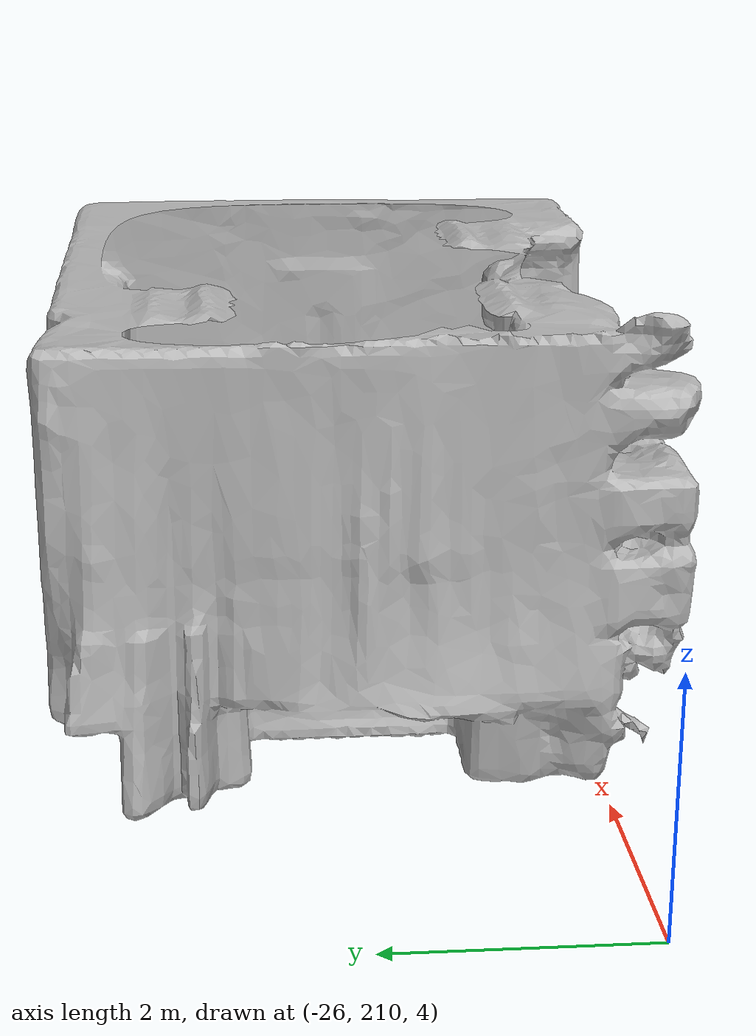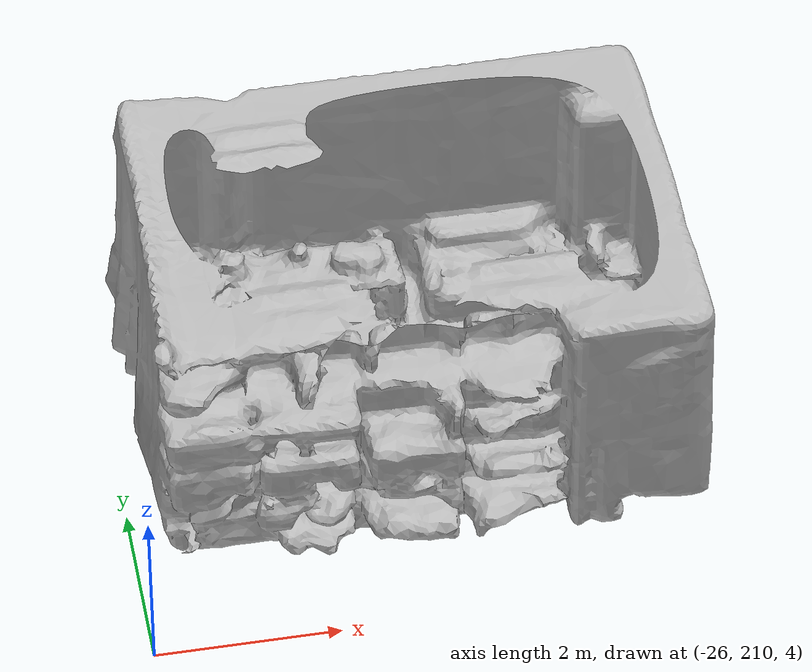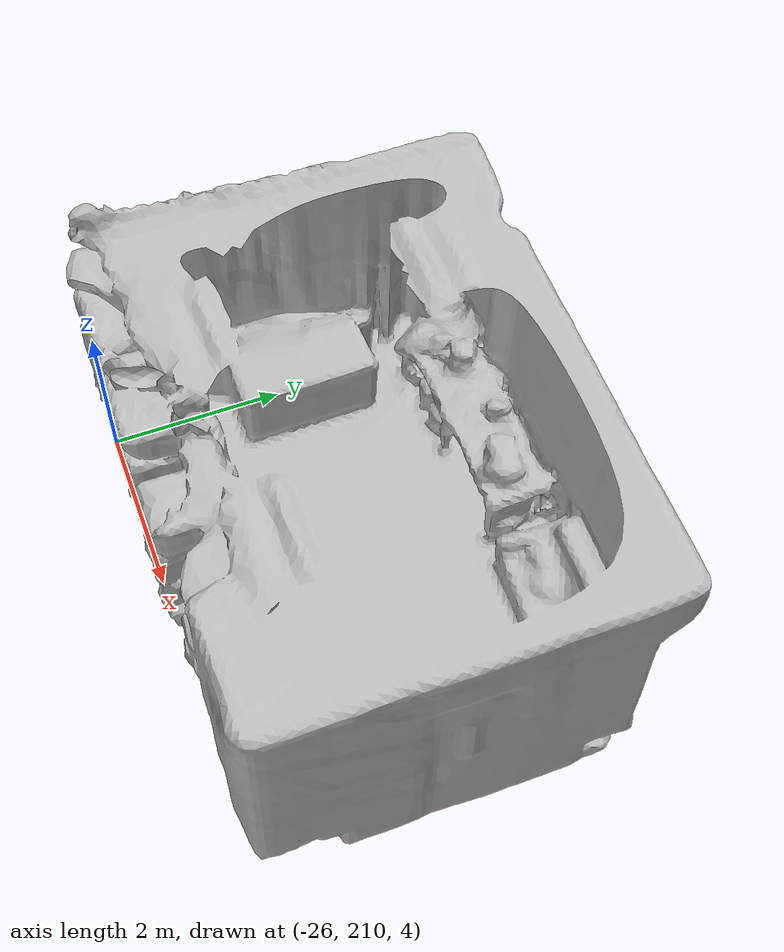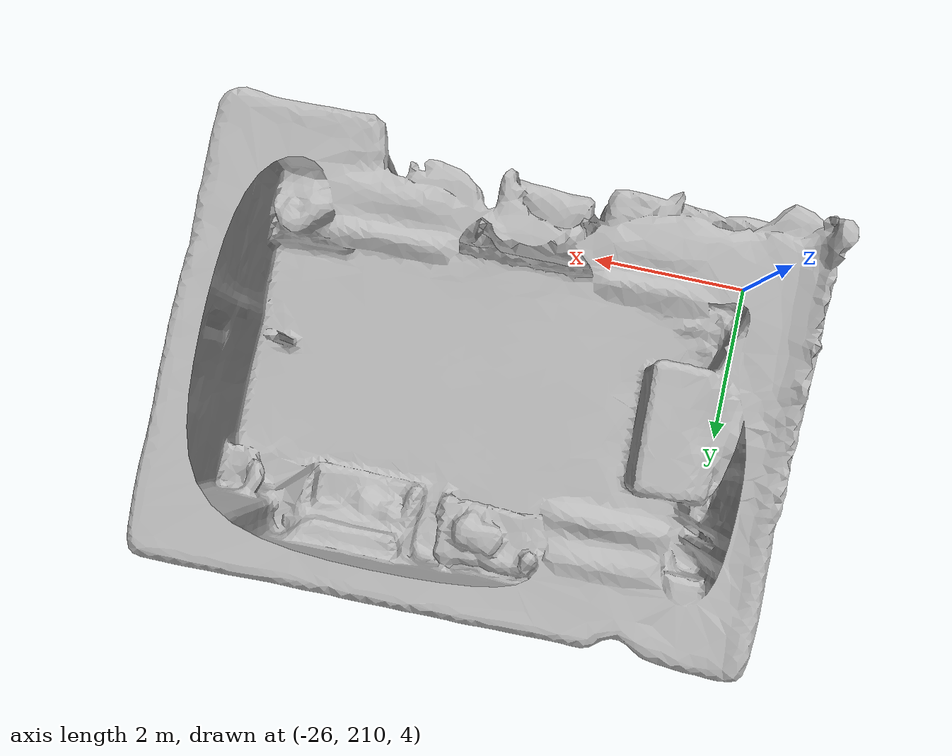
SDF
<?xml version="1.0" ?>
<sdf version="1.5">
  <model name="env2">
  <pose>-23 212 5 0 0 -1.5707</pose>
    <static>true</static>
    <link name="link">
      <collision name="collision">
        <geometry>
          <mesh>
            <uri>model://env2/meshes/env2.dae</uri>
          </mesh>
        </geometry>
      </collision>
      <visual name="visual">
        <geometry>
          <mesh>
            <uri>model://env2/meshes/env2.dae</uri>
          </mesh>
        </geometry>
      </visual>
    </link>
  </model>
</sdf>
